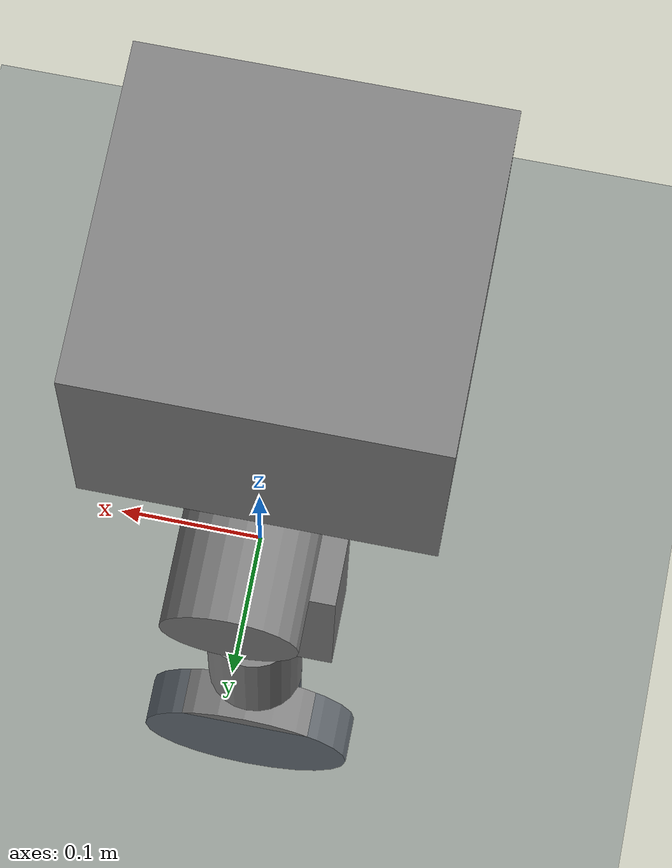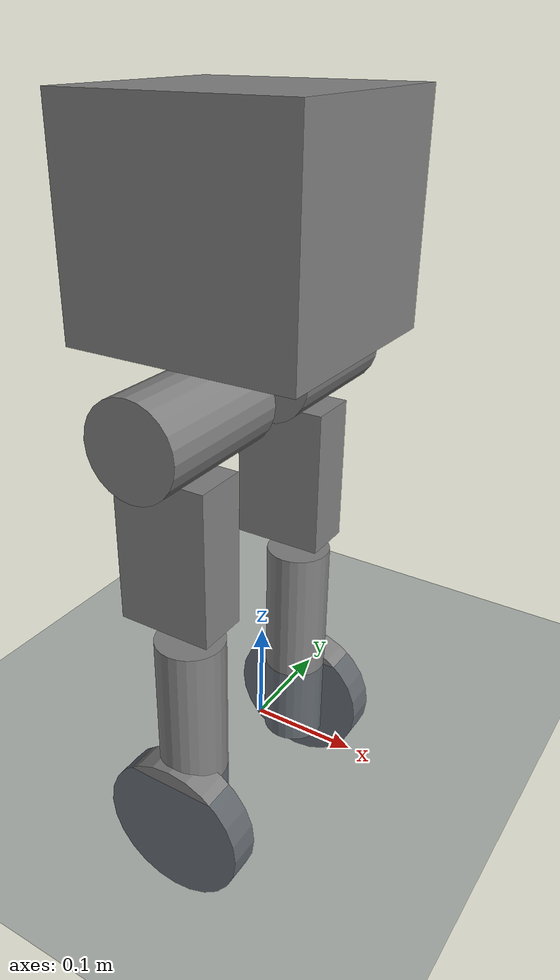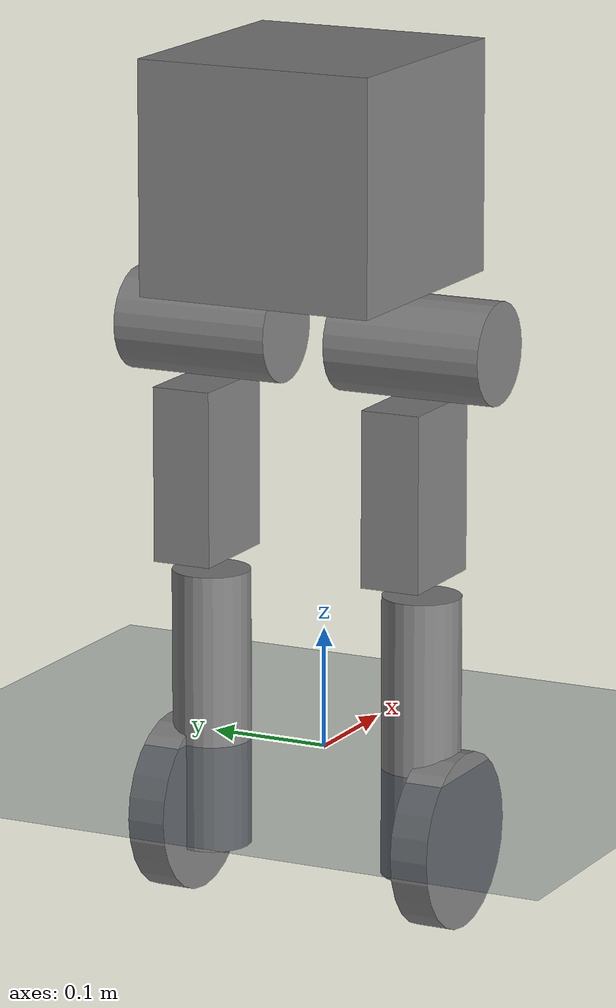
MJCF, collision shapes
<mujoco model="WF_GOAT_sim2real">
    <compiler angle="radian" coordinate="local"/>
    <option timestep="0.002" gravity="0 0 -9.81"/>

    <asset>
        <texture name="texplane" type="2d" builtin="checker" rgb1=".2 .3 .4" rgb2=".1 0.15 0.2" width="512" height="512"/>
        <material name="matplane" reflectance="0.3" texture="texplane" texrepeat="1 1" texuniform="true"/>
    </asset>

    <worldbody>
        <light directional="true" diffuse=".8 .8 .8" specular=".2 .2 .2" pos="0 0 5" dir="0 0 -1"/>
        <geom name="floor" type="plane" size="0 0 1" material="matplane"/>
    </worldbody>

    <include file="./WF_GOAT.xml"/>

</mujoco>

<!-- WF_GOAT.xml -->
<mujoco model="WF_GOAT">
    <compiler angle="radian" coordinate="local" meshdir="../meshes/" autolimits="true"/>

    <option timestep="0.002" gravity="0 0 -9.81"/>

    <asset>
        <mesh name="base_Link" file="base_Link_simple.stl"/>
        <mesh name="hip_L_Link" file="hip_L_Link.stl"/>
        <mesh name="hip_R_Link" file="hip_R_Link.stl"/>
        <mesh name="thigh_L_Link" file="thigh_L_Link.stl"/>
        <mesh name="thigh_R_Link" file="thigh_R_Link.stl"/>
        <mesh name="calf_L_Link" file="calf_L_Link.stl"/>
        <mesh name="calf_R_Link" file="calf_R_Link.stl"/>
        <mesh name="wheel_L_Link" file="wheel_L_Link.stl"/>
        <mesh name="wheel_R_Link" file="wheel_R_Link.stl"/>

        <material name="orange" rgba="1.0 0.423 0.039 1.0"/>
        <material name="black" rgba="0.792 0.819 0.933 1.0"/>
        <material name="white" rgba="1.0 1.0 1.0 1.0"/>
    </asset>

    <default>
        <joint damping="0.0024" frictionloss="0.0645"/>
        <geom contype="1" conaffinity="1" friction="0.65 0.1 0.1"/>
        <motor ctrllimited="true"/>
    </default>

    <worldbody>
        <body name="base_Link" pos="0 0 0.5">
            <freejoint name="root"/>
            <site name="imu_site" pos="0 0 0" size="0.01" type="sphere" rgba="1 0 0 1"/>

            <inertial pos="-0.009521 0.000016 -0.072346" mass="2.818" fullinertia="0.02028445 0.023476973 0.021206204 -0.000005647 0.006404633 0.000000541"/>
            <geom type="mesh" mesh="base_Link" material="black" pos="-0.1235 0 0.0155" contype="0" conaffinity="0" group="1"/>
            <geom type="box" size="0.107 0.100 0.095" pos="-0.02 0 -0.015" group="3"/>

            <body name="hip_L_Link" pos="0.038386 0.094233 -0.152597">
                <joint name="hip_L_Joint" type="hinge" axis="-1 0 0" range="-1.7453 1.0123"/>
                <inertial pos="-0.048092 -0.038296 -0.000162" mass="0.32" fullinertia="0.0001437 0.0002157 0.0001977 -0.0000128 -0.00000153 -0.000000447"/>
                <geom type="mesh" mesh="hip_L_Link" material="black" contype="0" conaffinity="0" group="1"/>
                <geom type="cylinder" size="0.042 0.0675" pos="-0.0535 0 0" euler="1.57 0 0" group="3"/>

                <body name="thigh_L_Link" pos="-0.054 -0.017 0">
                    <joint name="thigh_L_Joint" type="hinge" axis="0 1 0" range="-0.3840 2.0071"/>
                    <inertial pos="-0.002292 0.044134 -0.032074" mass="0.429" fullinertia="0.002141 0.002065 0.000345 -0.000025 -0.000067 -0.000348"/>
                    <geom type="mesh" mesh="thigh_L_Link" material="white" contype="0" conaffinity="0" group="1"/>
                    <geom type="box" size="0.045 0.025 0.0725" pos="-0.011 0.016 -0.116" group="3"/>

                    <body name="calf_L_Link" pos="0 0.018 -0.205">
                        <joint name="knee_L_Joint" type="hinge" axis="0 -1 0" range="-0.523599 2.3387" damping="0.299" frictionloss="0.443"/>
                        <inertial pos="0.001922 0.000564 -0.169664" mass="0.287" fullinertia="0.001163 0.001199 0.000092 0.0000005 -0.000035 0.0000013"/>
                        <geom type="mesh" mesh="calf_L_Link" material="black" contype="0" conaffinity="0" group="1"/>
                        <geom type="cylinder" size="0.0325 0.1165" pos="0 0 -0.116" group="3"/>

                        <body name="wheel_L_Link" pos="0 0.016555 -0.200">
                            <joint name="wheel_L_Joint" type="hinge" axis="0 1 0"/>
                            <inertial pos="0 0.007264 -0.000002" mass="0.212" fullinertia="0.000338 0.000647 0.000338 -0.000000001 -0.000000008 0.000000001"/>
                            <geom type="mesh" mesh="wheel_L_Link" material="orange" contype="0" conaffinity="0" group="1"/>
                            <geom type="cylinder" size="0.07275 0.016" pos="0 0.007 0" euler="1.5707 0 0" group="3"/>
                        </body>
                    </body>
                </body>
            </body>

            <body name="hip_R_Link" pos="0.038386 -0.094233 -0.152597">
                <joint name="hip_R_Joint" type="hinge" axis="-1 0 0" range="-1.0123 1.7453"/>
                <inertial pos="-0.048092 0.038296 -0.000162" mass="0.32" fullinertia="0.000143 0.000215 0.000197 0.000012 -0.000001 0.0000004"/>
                <geom type="mesh" mesh="hip_R_Link" material="black" contype="0" conaffinity="0" group="1"/>
                <geom type="cylinder" size="0.042 0.0675" pos="-0.0535 0 0" euler="1.57 0 0" group="3"/>

                <body name="thigh_R_Link" pos="-0.054 0.017 0">
                    <joint name="thigh_R_Joint" type="hinge" axis="0 -1 0" range="-2.0071 0.3840"/>
                    <inertial pos="-0.002292 -0.044134 -0.032074" mass="0.429" fullinertia="0.002141 0.002065 0.000345 0.000025 -0.000067 0.000348"/>
                    <geom type="mesh" mesh="thigh_R_Link" material="white" contype="0" conaffinity="0" group="1"/>
                    <geom type="box" size="0.045 0.025 0.0725" pos="-0.011 -0.016 -0.116" group="3"/>

                    <body name="calf_R_Link" pos="0 -0.018 -0.205">
                        <joint name="knee_R_Joint" type="hinge" axis="0 1 0" range="-2.3387 0.523599" damping="0.299" frictionloss="0.443"/>
                        <inertial pos="0.001922 -0.000564 -0.169664" mass="0.287" fullinertia="0.001163 0.001199 0.000092 -0.0000005 -0.000035 -0.0000013"/>
                        <geom type="mesh" mesh="calf_R_Link" material="black" contype="0" conaffinity="0" group="1"/>
                        <geom type="cylinder" size="0.0325 0.1165" pos="0 0 -0.116" group="3"/>

                        <body name="wheel_R_Link" pos="0 -0.016555 -0.200">
                            <joint name="wheel_R_Joint" type="hinge" axis="0 -1 0"/>
                            <inertial pos="0 -0.007264 -0.000002" mass="0.212" fullinertia="0.000338 0.000647 0.000338 0.000000001 -0.000000008 -0.000000001"/>
                            <geom type="mesh" mesh="wheel_R_Link" material="orange" contype="0" conaffinity="0" group="1"/>
                            <geom type="cylinder" size="0.07275 0.016" pos="0 -0.007 0" euler="1.5707 0 0" group="3"/>
                        </body>
                    </body>
                </body>
            </body>
        </body>
    </worldbody>

    <actuator>
        <motor name="hip_L_motor" joint="hip_L_Joint" ctrlrange="-4.5 4.5"/>
        <motor name="hip_R_motor" joint="hip_R_Joint" ctrlrange="-4.5 4.5"/>
        <motor name="thigh_L_motor" joint="thigh_L_Joint" ctrlrange="-4.5 4.5"/>
        <motor name="thigh_R_motor" joint="thigh_R_Joint" ctrlrange="-4.5 4.5"/>
        <motor name="knee_L_motor" joint="knee_L_Joint" ctrlrange="-4.5 4.5"/>
        <motor name="knee_R_motor" joint="knee_R_Joint" ctrlrange="-4.5 4.5"/>
        <motor name="wheel_L_motor" joint="wheel_L_Joint" ctrlrange="-2.5 2.5"/>
        <motor name="wheel_R_motor" joint="wheel_R_Joint" ctrlrange="-2.5 2.5"/>
    </actuator>

    <sensor>
        <accelerometer name="imu_acc" site="imu_site"/>
        <gyro name="imu_gyro" site="imu_site"/>
        <magnetometer name="imu_mag" site="imu_site"/>
    </sensor>
</mujoco>
